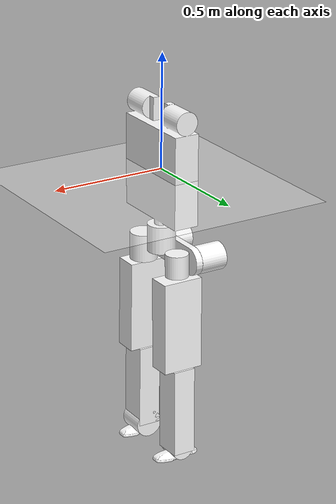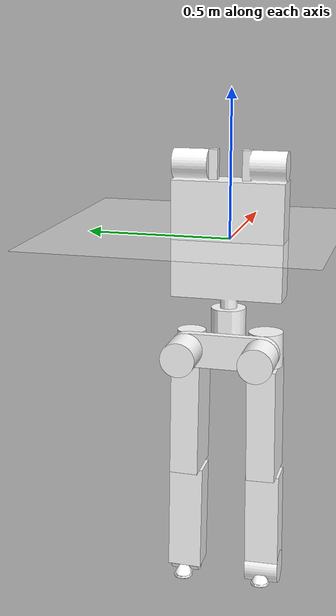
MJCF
<mujoco model="assembly_cowa_robot_new_foot4">
  <compiler angle="radian" meshdir="../meshes/" eulerseq="zyx"/>
    <option timestep='0.001' iterations='50' solver='PGS' gravity='0 0 -9.81'>
    <flag sensornoise="enable" frictionloss="enable"/>
    </option>
    <size njmax="500" nconmax="100" />
    <visual>
        <quality shadowsize='4096'/>
        <map znear='0.05'/>
    </visual>

    <default>
        <joint limited='true'/>
        <motor ctrllimited='true'/>
    </default>

  <asset>
    <mesh name="base_link" file="/home/zhengde.ma/Wiki-MJCF-master/models/assembly_cowa_robot_new_foot4/urdf/../meshes/base_link.STL" />
    <mesh name="left_leg_roll_link" file="/home/zhengde.ma/Wiki-MJCF-master/models/assembly_cowa_robot_new_foot4/urdf/../meshes/left_leg_roll_link.STL" />
    <mesh name="left_leg_yaw_link" file="/home/zhengde.ma/Wiki-MJCF-master/models/assembly_cowa_robot_new_foot4/urdf/../meshes/left_leg_yaw_link.STL" />
    <mesh name="left_leg_pitch_link" file="/home/zhengde.ma/Wiki-MJCF-master/models/assembly_cowa_robot_new_foot4/urdf/../meshes/left_leg_pitch_link.STL" />
    <mesh name="left_knee_link" file="/home/zhengde.ma/Wiki-MJCF-master/models/assembly_cowa_robot_new_foot4/urdf/../meshes/left_knee_link.STL" />
    <mesh name="left_ankle_pitch_link" file="/home/zhengde.ma/Wiki-MJCF-master/models/assembly_cowa_robot_new_foot4/urdf/../meshes/left_ankle_pitch_link.STL" />
    <mesh name="left_ankle_roll_link" file="/home/zhengde.ma/Wiki-MJCF-master/models/assembly_cowa_robot_new_foot4/urdf/../meshes/left_ankle_roll_link.STL" />
    <mesh name="right_leg_roll_link" file="/home/zhengde.ma/Wiki-MJCF-master/models/assembly_cowa_robot_new_foot4/urdf/../meshes/right_leg_roll_link.STL" />
    <mesh name="right_leg_yaw_link" file="/home/zhengde.ma/Wiki-MJCF-master/models/assembly_cowa_robot_new_foot4/urdf/../meshes/right_leg_yaw_link.STL" />
    <mesh name="right_leg_pitch_link" file="/home/zhengde.ma/Wiki-MJCF-master/models/assembly_cowa_robot_new_foot4/urdf/../meshes/right_leg_pitch_link.STL" />
    <mesh name="right_knee_link" file="/home/zhengde.ma/Wiki-MJCF-master/models/assembly_cowa_robot_new_foot4/urdf/../meshes/right_knee_link.STL" />
    <mesh name="right_ankle_pitch_link" file="/home/zhengde.ma/Wiki-MJCF-master/models/assembly_cowa_robot_new_foot4/urdf/../meshes/right_ankle_pitch_link.STL" />
    <mesh name="right_ankle_roll_link" file="/home/zhengde.ma/Wiki-MJCF-master/models/assembly_cowa_robot_new_foot4/urdf/../meshes/right_ankle_roll_link.STL" />
  </asset>

  <worldbody>
    <body name="base_link">
      <inertial pos="-0.0041092 0 -0.018435" quat="0.999967 0 0.0081641 0" mass="21.702" diaginertia="0.476381 0.27338 0.248479" />
              <joint type='slide' axis='1 0 0' limited='false' />
              <joint type='slide' axis='0 1 0' limited='false' />
              <joint type='slide' axis='0 0 1' limited='false' />
              <joint type='ball' limited='false' />
              <site name='imu' size='0.01' pos='0.0 0 0.0'/>
      <geom type="mesh" rgba="1 1 1 1" mesh="base_link" />
      <body name="left_leg_roll_link" pos="-0.055 0.132 -0.38" quat="0.00494581 -0.707089 -0.00495101 0.707089">
        <inertial pos="0 0 0.09" mass="1.35717" diaginertia="0.0285005 0.0285005 0.024429" />
        <joint name="left_leg_roll_joint" pos="0 0 0" axis="0 0 1" range="-1.2 0.12" />
        <geom type="mesh" rgba="1 1 1 1" mesh="left_leg_roll_link" />
        <body name="left_leg_yaw_link" pos="0 0 -0.06" quat="0.707105 0 0.707108 0">
          <inertial pos="0 0 0" mass="1.3572" diaginertia="0.028501 0.028501 0.024429" />
          <joint name="left_leg_yaw_joint" pos="0 0 0" axis="0 0 1" range="-1 1" />
          <geom type="mesh" rgba="1 1 1 1" mesh="left_leg_yaw_link" />
          <body name="left_leg_pitch_link" pos="0 0 0.06" quat="0.499998 0.5 -0.5 0.500002">
            <inertial pos="0.202 0 0" quat="0.707107 0.707107 0 0" mass="8.7" diaginertia="0.25694 0.15854 0.10497" />
            <joint name="left_leg_pitch_joint" pos="0 0 0" axis="0 0 1" range="-2 0.23" />
            <geom type="mesh" rgba="1 1 1 1" mesh="left_leg_pitch_link" />
            <body name="left_knee_link" pos="0.404 0 0">
              <inertial pos="0.1865 0 0" quat="0.5 0.5 0.5 0.5" mass="3" diaginertia="0.57266 0.55625 0.091012" />
              <joint name="left_knee_joint" pos="0 0 0" axis="0 0 1" range="-0.1 1.8" />
              <geom type="mesh" rgba="1 1 1 1" mesh="left_knee_link" />
              <body name="left_ankle_pitch_link" pos="0.373 0 0" quat="0.717075 0 0 -0.696996">
                <inertial pos="0 0 0" mass="1.35717" diaginertia="0.0285005 0.0285005 0.024429" />
                <joint name="left_ankle_pitch_joint" pos="0 0 0" axis="0 0 1" range="-1 1" />
                <geom type="mesh" rgba="1 1 1 1" mesh="left_ankle_pitch_link" />
                <body name="left_ankle_roll_link" quat="0.0149799 0.707089 -0.00507216 0.706948">
                  <inertial pos="0.00022772 -0.0491 -0.0014033" quat="0.999948 0.0100299 0.000389691 0.00150337" mass="0.5612" diaginertia="0.32058 0.280467 0.187282" />
                  <joint name="left_ankle_roll_joint" pos="0 0 0" axis="-0.00039734 0.0283529 -0.999598" range="-0.55 0.55" />
                  <geom type="mesh" rgba="1 1 1 1" mesh="left_ankle_roll_link" />
                </body>
              </body>
            </body>
          </body>
        </body>
      </body>
      <body name="right_leg_roll_link" pos="-0.055 -0.132 -0.38" quat="0.503489 0.496485 0.503493 0.496485">
        <inertial pos="0 0 -0.09" mass="1.35717" diaginertia="0.0285005 0.0285005 0.024429" />
        <joint name="right_leg_roll_joint" pos="0 0 0" axis="0 0 1" range="-1.2 0.12"/>
        <geom type="mesh" rgba="1 1 1 1" mesh="right_leg_roll_link" />
        <body name="right_leg_yaw_link" pos="0 0 0.06" quat="0.499998 0.5 -0.5 0.500002">
          <inertial pos="0 0 0" mass="1.35717" diaginertia="0.0285005 0.0285005 0.024429" />
          <joint name="right_leg_yaw_joint" pos="0 0 0" axis="0 0 -1" range="-1 1"/>
          <geom type="mesh" rgba="1 1 1 1" mesh="right_leg_yaw_link" />
          <body name="right_leg_pitch_link" pos="0 0 0.06" quat="0.499998 0.5 -0.5 0.500002">
            <inertial pos="0.202 0 0" quat="0.707107 0.707107 0 0" mass="8.7" diaginertia="0.256944 0.158543 0.104969" />
            <joint name="right_leg_pitch_joint" pos="0 0 0" axis="0 0 1" range="-2 0.23" />
            <geom type="mesh" rgba="1 1 1 1" mesh="right_leg_pitch_link" />
            <body name="right_knee_link" pos="0.39854 0 -0.071004">
              <inertial pos="0.191965 0 0.0710042" quat="0.5 0.5 0.5 0.5" mass="3" diaginertia="0.572663 0.556251 0.091012" />
              <joint name="right_knee_joint" pos="0 0 0" axis="0 0 1" range="-0.1 1.8"/>
              <geom type="mesh" rgba="1 1 1 1" mesh="right_knee_link" />
              <body name="right_ankle_pitch_link" pos="0.37846 0 0.071004" quat="0.707105 0 0 -0.707108">
                <inertial pos="0 0 0" mass="1.35717" diaginertia="0.0285005 0.0285005 0.024429" />
                <joint name="right_ankle_pitch_joint" pos="0 0 0" axis="0 0 1" range="-1 1"  />
                <geom type="mesh" rgba="1 1 1 1" mesh="right_ankle_pitch_link" />
                <body name="right_ankle_roll_link" quat="0.0283042 -0.706541 -0.0283041 -0.706539">
                  <inertial pos="-2.04624e-07 -0.0490985 -0.00140333" quat="0.999949 0.0100392 0.000294159 0.000806362" mass="0.5612" diaginertia="0.320607 0.280445 0.187287" />
                  <joint name="right_ankle_roll_joint" pos="0 0 0" axis="0 0.0283559 -0.999598" range="-0.55 0.55" />
                  <geom type="mesh" rgba="1 1 1 1" mesh="right_ankle_roll_link" />
                </body>
              </body>
            </body>
          </body>
        </body>
      </body>
    </body>
  <geom name="ground_plane" type="plane" size="5 5 10" material="MatPlane" rgba="1 1 1 1" /><light pos="0 0 1000" castshadow="true" /></worldbody>
<asset><texture name="texplane" builtin="checker" height="512" width="512" rgb1=".2 .3 .4" rgb2=".1 .15 .2" type="2d" /><material name="MatPlane" reflectance="0.5" shininess="0.01" specular="0.1" texrepeat="1 1" texture="texplane" texuniform="true" /></asset>

  <actuator>
    <motor name="left_leg_roll_joint" joint="left_leg_roll_joint" gear="1" ctrllimited="true" ctrlrange="-200 200"/>
    <motor name="left_leg_yaw_joint" joint="left_leg_yaw_joint" gear="1" ctrllimited="true" ctrlrange="-200 200"/>
    <motor name="left_leg_pitch_joint" joint="left_leg_pitch_joint" gear="1" ctrllimited="true" ctrlrange="-200 200"/>
    <motor name="left_knee_joint" joint="left_knee_joint" gear="1" ctrllimited="true" ctrlrange="-200 200"/>
    <motor name="left_ankle_pitch_joint" joint="left_ankle_pitch_joint" gear="1" ctrllimited="true" ctrlrange="-200 200"/>
    <motor name="left_ankle_roll_joint" joint="left_ankle_roll_joint" gear="1" ctrllimited="true" ctrlrange="-200 200"/>
    <motor name="right_leg_roll_joint" joint="right_leg_roll_joint" gear="1" ctrllimited="true" ctrlrange="-200 200"/>
    <motor name="right_leg_yaw_joint" joint="right_leg_yaw_joint" gear="1" ctrllimited="true" ctrlrange="-200 200"/>
    <motor name="right_leg_pitch_joint" joint="right_leg_pitch_joint" gear="1" ctrllimited="true" ctrlrange="-200 200"/>
    <motor name="right_knee_joint" joint="right_knee_joint" gear="1" ctrllimited="true" ctrlrange="-200 200"/>
    <motor name="right_ankle_pitch_joint" joint="right_ankle_pitch_joint" gear="1" ctrllimited="true" ctrlrange="-200 200"/>
    <motor name="right_ankle_roll_joint" joint="right_ankle_roll_joint" gear="1" ctrllimited="true" ctrlrange="-200 200"/>
  </actuator>

  <sensor>
    <actuatorpos name='left_leg_roll_joint_p'  actuator='left_leg_roll_joint' user='13'/>
    <actuatorpos name='left_leg_yaw_joint_p'  actuator='left_leg_yaw_joint' user='13'/>
    <actuatorpos name='left_leg_pitch_joint_p'  actuator='left_leg_pitch_joint' user='13'/>
    <actuatorpos name='left_knee_joint_p'  actuator='left_knee_joint' user='13'/>
    <actuatorpos name='left_ankle_pitch_joint_p'  actuator='left_ankle_pitch_joint' user='13'/>
    <actuatorpos name='left_ankle_roll_joint_p'  actuator='left_ankle_roll_joint' user='13'/>
    <actuatorpos name='right_leg_roll_joint_p'  actuator='right_leg_roll_joint' user='13'/>
    <actuatorpos name='right_leg_yaw_joint_p'  actuator='right_leg_yaw_joint' user='13'/>
    <actuatorpos name='right_leg_pitch_joint_p'  actuator='right_leg_pitch_joint' user='13'/>
    <actuatorpos name='right_knee_joint_p'  actuator='right_knee_joint' user='13'/>
    <actuatorpos name='right_ankle_pitch_joint_p'  actuator='right_ankle_pitch_joint' user='13'/>
    <actuatorpos name='right_ankle_roll_joint_p'  actuator='right_ankle_roll_joint' user='13'/>

    <actuatorvel name='left_leg_roll_joint_v'  actuator='left_leg_roll_joint' user='13'/>
    <actuatorvel name='left_leg_yaw_joint_v'  actuator='left_leg_yaw_joint' user='13'/>
    <actuatorvel name='left_leg_pitch_joint_v'  actuator='left_leg_pitch_joint' user='13'/>
    <actuatorvel name='left_knee_joint_v'  actuator='left_knee_joint' user='13'/>
    <actuatorvel name='left_ankle_pitch_joint_v'  actuator='left_ankle_pitch_joint' user='13'/>
    <actuatorvel name='left_ankle_roll_joint_v'  actuator='left_ankle_roll_joint' user='13'/>
    <actuatorvel name='right_leg_roll_joint_v'  actuator='right_leg_roll_joint' user='13'/>
    <actuatorvel name='right_leg_yaw_joint_v'  actuator='right_leg_yaw_joint' user='13'/>
    <actuatorvel name='right_leg_pitch_joint_v'  actuator='right_leg_pitch_joint' user='13'/>
    <actuatorvel name='right_knee_joint_v'  actuator='right_knee_joint' user='13'/>
    <actuatorvel name='right_ankle_pitch_joint_v'  actuator='right_ankle_pitch_joint' user='13'/>
    <actuatorvel name='right_ankle_roll_joint_v'  actuator='right_ankle_roll_joint' user='13'/>

    <actuatorfrc name='left_leg_roll_joint_f'  actuator='left_leg_roll_joint' user='13' noise='1e-3'/>
    <actuatorfrc name='left_leg_yaw_joint_f'  actuator='left_leg_yaw_joint' user='13' noise='1e-3'/>
    <actuatorfrc name='left_leg_pitch_joint_f'  actuator='left_leg_pitch_joint' user='13' noise='1e-3'/>
    <actuatorfrc name='left_knee_joint_f'  actuator='left_knee_joint' user='13' noise='1e-3'/>
    <actuatorfrc name='left_ankle_pitch_joint_f'  actuator='left_ankle_pitch_joint' user='13' noise='1e-3'/>
    <actuatorfrc name='left_ankle_roll_joint_f'  actuator='left_ankle_roll_joint' user='13' noise='1e-3'/>
    <actuatorfrc name='right_leg_roll_joint_f'  actuator='right_leg_roll_joint' user='13' noise='1e-3'/>
    <actuatorfrc name='right_leg_yaw_joint_f'  actuator='right_leg_yaw_joint' user='13' noise='1e-3'/>
    <actuatorfrc name='right_leg_pitch_joint_f'  actuator='right_leg_pitch_joint' user='13' noise='1e-3'/>
    <actuatorfrc name='right_knee_joint_f'  actuator='right_knee_joint' user='13' noise='1e-3'/>
    <actuatorfrc name='right_ankle_pitch_joint_f'  actuator='right_ankle_pitch_joint' user='13' noise='1e-3'/>
    <actuatorfrc name='right_ankle_roll_joint_f'  actuator='right_ankle_roll_joint' user='13' noise='1e-3'/>

    <framequat     name='orientation' objtype='site' noise='0.001' objname='imu'/>
    <framepos     name='position' objtype='site' noise='0.001' objname='imu'/>
    <gyro          name='angular-velocity'    site='imu' noise='0.005' cutoff='34.9'/>
    <velocimeter   name='linear-velocity'     site='imu' noise='0.001' cutoff='30'/>
    <accelerometer name='linear-acceleration' site='imu' noise='0.005' cutoff='157'/>
    <magnetometer  name='magnetometer'        site='imu'/>

</sensor>

</mujoco>
